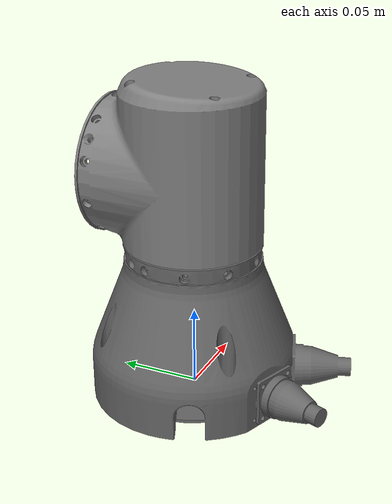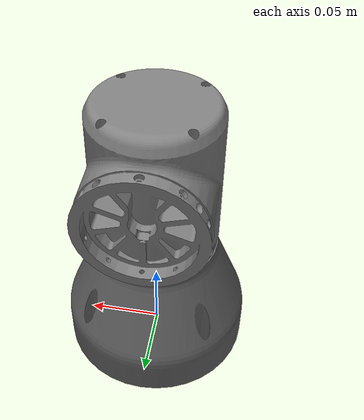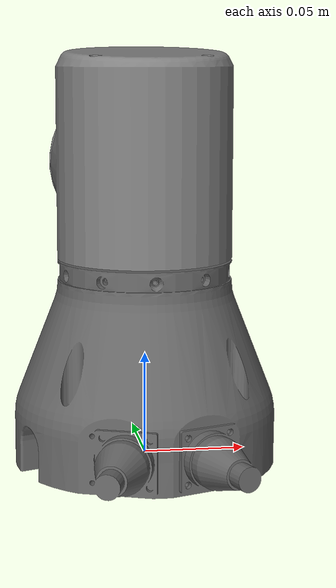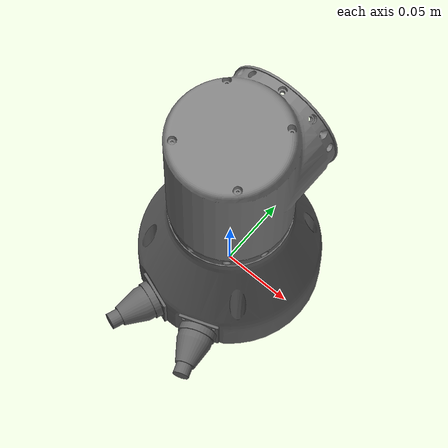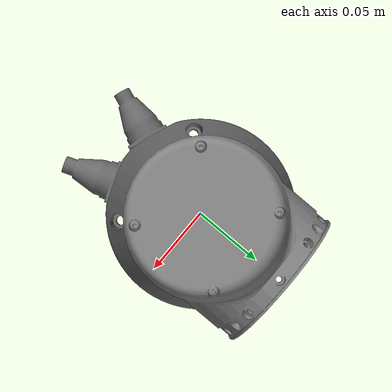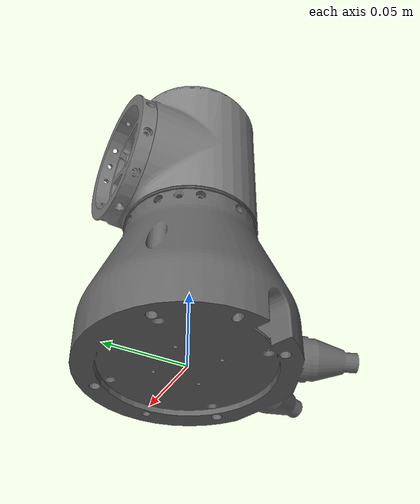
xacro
<?xml version="1.0"?>
<robot xmlns:xacro="http://www.ros.org/wiki/xacro" name="eRobo3">
    <xacro:arg name="initial_positions_file" default="initial_positions.yaml" />

    <!-- Import eRobo3 urdf file -->
    <xacro:include filename="$(find erob_arm)/urdf/erob.urdf" />

    <!-- Import control_xacro -->
    <xacro:include filename="eRobo3.ros2_control.xacro" />

    <xacro:eRobo3_ros2_control name="FakeSystem" initial_positions_file="$(arg initial_positions_file)"/>

</robot>

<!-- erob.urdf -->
<robot name="eRobo3" version="1.0">
  <joint name="Joint_1" type="revolute">
    <safety_controller k_position="100.0" k_velocity="40.0" soft_lower_limit="-2.8973" soft_upper_limit="2.8973" />
    <origin rpy="0.00000 0.00000 0.00000" xyz="0.00000 0.00000 0.00000"/>
    <parent link="base_link"/>
    <child link="Link_1"/>
    <axis xyz="0.00000 0.00000 1.00000"/>
    <limit effort="87" lower="-2.9671" upper="2.9671" velocity="2.3925" />
  </joint>
  <link name="Link_1">
    <collision name="Link_1_collision">
      <origin rpy="0.00000 0.00000 0.00000" xyz="0.00000 0.00000 0.00000"/>
      <geometry>
        <mesh filename="package://erob_arm/meshes/Link_1.stl" scale="1.00000 1.00000 1.00000"/>
      </geometry>
    </collision>
    <inertial>
      <inertia ixx="0.00054" ixy="0.00000" ixz="0.00000" iyy="0.00052" iyz="0.00000" izz="0.00054"/>
      <origin rpy="0.00000 0.00000 0.00000" xyz="0.00000 0.00308 0.13617"/>
      <mass value="0.50622"/>
    </inertial>
    <visual name="Link_1_visual">
      <origin rpy="0.00000 0.00000 0.00000" xyz="0.00000 0.00000 0.00000"/>
      <material name="#ffffffff"/>
      <geometry>
        <mesh filename="package://erob_arm/meshes/Link_1.stl" scale="1.00000 1.00000 1.00000"/>
      </geometry>
    </visual>
  </link>
  <link name="base_link">
    <collision name="base_link_collision">
      <origin rpy="0.00000 0.00000 0.00000" xyz="0.00000 0.00000 0.00000"/>
      <geometry>
        <mesh filename="package://erob_arm/meshes/base_link.stl" scale="1.00000 1.00000 1.00000"/>
      </geometry>
    </collision>
    <inertial>
      <inertia ixx="0.00083" ixy="0.00001" ixz="0.00001" iyy="0.00085" iyz="0.00003" izz="0.00110"/>
      <origin rpy="0.00000 0.00000 0.00000" xyz="0.00095 -0.00172 0.03600"/>
      <mass value="0.47602"/>
    </inertial>
    <visual name="base_link_visual">
      <origin rpy="0.00000 0.00000 0.00000" xyz="0.00000 0.00000 0.00000"/>
      <material name="base"/>
      <geometry>
        <mesh filename="package://erob_arm/meshes/base_link.stl" scale="1.00000 1.00000 1.00000"/>
      </geometry>
    </visual>
  </link>
  <material name="#ffffffff">
    <color rgba="0.50000 0.50000 0.50000 1.0000"/>
  </material>
    <material name="base">
    <color rgba="0.40000 0.40000 0.40000 1.0000"/>
  </material>
</robot>
